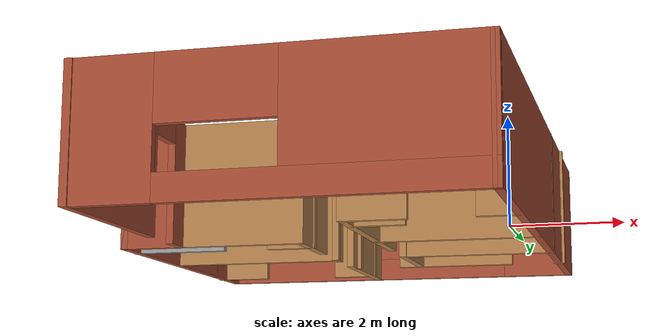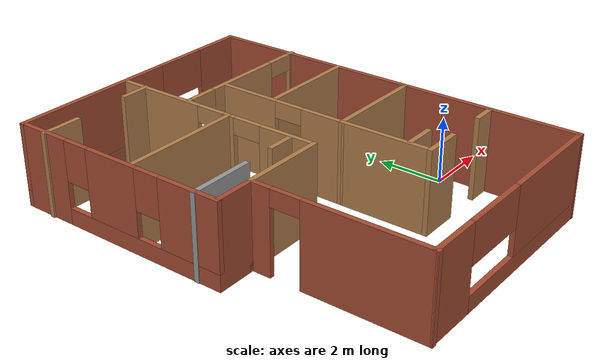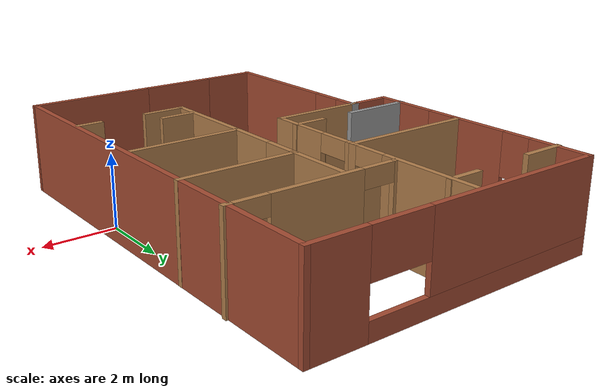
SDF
<?xml version='1.0'?>
<sdf version='1.6'>
  <model name='3bd2ba_apt_model'>
    <pose frame=''>-3.83179 2.15368 0 0 -0 0</pose>
    <link name='Wall_44'>
      <pose frame=''>0.608675 -5.95414 0 0 -0 -0.008592</pose>
      <visual name='Wall_44_Visual_0'>
        <pose frame=''>-2.8309 0 1.25 0 -0 0</pose>
        <geometry>
          <box>
            <size>1.5982 0.15 2.5</size>
          </box>
        </geometry>
        <material>
          <script>
            <uri>file://media/materials/scripts/gazebo.material</uri>
            <name>Gazebo/Bricks</name>
          </script>
          <ambient>1 1 1 1</ambient>
        </material>
        <meta>
          <layer>0</layer>
        </meta>
      </visual>
      <collision name='Wall_44_Collision_0'>
        <geometry>
          <box>
            <size>1.5982 0.15 2.5</size>
          </box>
        </geometry>
        <pose frame=''>-2.8309 0 1.25 0 -0 0</pose>
      </collision>
      <visual name='Wall_44_Visual_1'>
        <pose frame=''>0.799099 0 0.25 0 -0 0</pose>
        <geometry>
          <box>
            <size>5.6618 0.15 0.5</size>
          </box>
        </geometry>
        <material>
          <script>
            <uri>file://media/materials/scripts/gazebo.material</uri>
            <name>Gazebo/Bricks</name>
          </script>
          <ambient>1 1 1 1</ambient>
        </material>
        <meta>
          <layer>0</layer>
        </meta>
      </visual>
      <collision name='Wall_44_Collision_1'>
        <geometry>
          <box>
            <size>5.6618 0.15 0.5</size>
          </box>
        </geometry>
        <pose frame=''>0.799099 0 0.25 0 -0 0</pose>
      </collision>
      <visual name='Wall_44_Visual_2'>
        <pose frame=''>1.86156 0 1.5 0 -0 0</pose>
        <geometry>
          <box>
            <size>3.53689 0.15 2</size>
          </box>
        </geometry>
        <material>
          <script>
            <uri>file://media/materials/scripts/gazebo.material</uri>
            <name>Gazebo/Bricks</name>
          </script>
          <ambient>1 1 1 1</ambient>
        </material>
        <meta>
          <layer>0</layer>
        </meta>
      </visual>
      <collision name='Wall_44_Collision_2'>
        <geometry>
          <box>
            <size>3.53689 0.15 2</size>
          </box>
        </geometry>
        <pose frame=''>1.86156 0 1.5 0 -0 0</pose>
      </collision>
      <visual name='Wall_44_Visual_3'>
        <pose frame=''>-0.969345 0 1.9 0 -0 0</pose>
        <geometry>
          <box>
            <size>2.12492 0.15 1.2</size>
          </box>
        </geometry>
        <material>
          <script>
            <uri>file://media/materials/scripts/gazebo.material</uri>
            <name>Gazebo/Bricks</name>
          </script>
          <ambient>1 1 1 1</ambient>
        </material>
        <meta>
          <layer>0</layer>
        </meta>
      </visual>
      <collision name='Wall_44_Collision_3'>
        <geometry>
          <box>
            <size>2.12492 0.15 1.2</size>
          </box>
        </geometry>
        <pose frame=''>-0.969345 0 1.9 0 -0 0</pose>
      </collision>
    </link>
    <link name='Wall_46'>
      <collision name='Wall_46_Collision'>
        <geometry>
          <box>
            <size>12.12 0.15 2.5</size>
          </box>
        </geometry>
        <pose frame=''>0 0 1.25 0 -0 0</pose>
      </collision>
      <visual name='Wall_46_Visual'>
        <pose frame=''>0 0 1.25 0 -0 0</pose>
        <geometry>
          <box>
            <size>12.12 0.15 2.5</size>
          </box>
        </geometry>
        <material>
          <script>
            <uri>file://media/materials/scripts/gazebo.material</uri>
            <name>Gazebo/Bricks</name>
          </script>
          <ambient>1 1 1 1</ambient>
        </material>
        <meta>
          <layer>0</layer>
        </meta>
      </visual>
      <pose frame=''>4.16379 0.000319 0 0 -0 1.5708</pose>
    </link>
    <link name='Wall_51'>
      <pose frame=''>-2.95519 -3.45318 0 0 -0 1.57429</pose>
      <visual name='Wall_51_Visual_0'>
        <pose frame=''>-0.739433 0 1.25 0 -0 0</pose>
        <geometry>
          <box>
            <size>3.67317 0.15 2.5</size>
          </box>
        </geometry>
        <material>
          <script>
            <uri>file://media/materials/scripts/gazebo.material</uri>
            <name>Gazebo/Bricks</name>
          </script>
          <ambient>1 1 1 1</ambient>
        </material>
        <meta>
          <layer>0</layer>
        </meta>
      </visual>
      <collision name='Wall_51_Collision_0'>
        <geometry>
          <box>
            <size>3.67317 0.15 2.5</size>
          </box>
        </geometry>
        <pose frame=''>-0.739433 0 1.25 0 -0 0</pose>
      </collision>
      <visual name='Wall_51_Visual_1'>
        <pose frame=''>2.28658 0 1.25 0 -0 0</pose>
        <geometry>
          <box>
            <size>0.578866 0.15 2.5</size>
          </box>
        </geometry>
        <material>
          <script>
            <uri>file://media/materials/scripts/gazebo.material</uri>
            <name>Gazebo/Bricks</name>
          </script>
          <ambient>1 1 1 1</ambient>
        </material>
        <meta>
          <layer>0</layer>
        </meta>
      </visual>
      <collision name='Wall_51_Collision_1'>
        <geometry>
          <box>
            <size>0.578866 0.15 2.5</size>
          </box>
        </geometry>
        <pose frame=''>2.28658 0 1.25 0 -0 0</pose>
      </collision>
      <visual name='Wall_51_Visual_2'>
        <pose frame=''>1.54715 0 2.25 0 -0 0</pose>
        <geometry>
          <box>
            <size>0.9 0.15 0.5</size>
          </box>
        </geometry>
        <material>
          <script>
            <uri>file://media/materials/scripts/gazebo.material</uri>
            <name>Gazebo/Bricks</name>
          </script>
          <ambient>1 1 1 1</ambient>
        </material>
        <meta>
          <layer>0</layer>
        </meta>
      </visual>
      <collision name='Wall_51_Collision_2'>
        <geometry>
          <box>
            <size>0.9 0.15 0.5</size>
          </box>
        </geometry>
        <pose frame=''>1.54715 0 2.25 0 -0 0</pose>
      </collision>
    </link>
    <link name='Wall_53'>
      <pose frame=''>-0.003209 5.98532 0 0 -0 3.14159</pose>
      <visual name='Wall_53_Visual_0'>
        <pose frame=''>-3.44144 0 1.25 0 -0 0</pose>
        <geometry>
          <box>
            <size>1.60111 0.15 2.5</size>
          </box>
        </geometry>
        <material>
          <script>
            <uri>file://media/materials/scripts/gazebo.material</uri>
            <name>Gazebo/Bricks</name>
          </script>
          <ambient>1 1 1 1</ambient>
        </material>
        <meta>
          <layer>0</layer>
        </meta>
      </visual>
      <collision name='Wall_53_Collision_0'>
        <geometry>
          <box>
            <size>1.60111 0.15 2.5</size>
          </box>
        </geometry>
        <pose frame=''>-3.44144 0 1.25 0 -0 0</pose>
      </collision>
      <visual name='Wall_53_Visual_1'>
        <pose frame=''>0.800555 0 0.25 0 -0 0</pose>
        <geometry>
          <box>
            <size>6.88289 0.15 0.5</size>
          </box>
        </geometry>
        <material>
          <script>
            <uri>file://media/materials/scripts/gazebo.material</uri>
            <name>Gazebo/Bricks</name>
          </script>
          <ambient>1 1 1 1</ambient>
        </material>
        <meta>
          <layer>0</layer>
        </meta>
      </visual>
      <collision name='Wall_53_Collision_1'>
        <geometry>
          <box>
            <size>6.88289 0.15 0.5</size>
          </box>
        </geometry>
        <pose frame=''>0.800555 0 0.25 0 -0 0</pose>
      </collision>
      <visual name='Wall_53_Visual_2'>
        <pose frame=''>1.63125 0 1.5 0 -0 0</pose>
        <geometry>
          <box>
            <size>5.2215 0.15 2</size>
          </box>
        </geometry>
        <material>
          <script>
            <uri>file://media/materials/scripts/gazebo.material</uri>
            <name>Gazebo/Bricks</name>
          </script>
          <ambient>1 1 1 1</ambient>
        </material>
        <meta>
          <layer>0</layer>
        </meta>
      </visual>
      <collision name='Wall_53_Collision_2'>
        <geometry>
          <box>
            <size>5.2215 0.15 2</size>
          </box>
        </geometry>
        <pose frame=''>1.63125 0 1.5 0 -0 0</pose>
      </collision>
      <visual name='Wall_53_Visual_3'>
        <pose frame=''>-1.81019 0 1.9 0 -0 0</pose>
        <geometry>
          <box>
            <size>1.66139 0.15 1.2</size>
          </box>
        </geometry>
        <material>
          <script>
            <uri>file://media/materials/scripts/gazebo.material</uri>
            <name>Gazebo/Bricks</name>
          </script>
          <ambient>1 1 1 1</ambient>
        </material>
        <meta>
          <layer>0</layer>
        </meta>
      </visual>
      <collision name='Wall_53_Collision_3'>
        <geometry>
          <box>
            <size>1.66139 0.15 1.2</size>
          </box>
        </geometry>
        <pose frame=''>-1.81019 0 1.9 0 -0 0</pose>
      </collision>
    </link>
    <link name='Wall_55'>
      <pose frame=''>-4.17021 2.57582 0 0 -0 -1.5708</pose>
      <visual name='Wall_55_Visual_0'>
        <pose frame=''>-2.62395 0 1.25 0 -0 0</pose>
        <geometry>
          <box>
            <size>1.72111 0.15 2.5</size>
          </box>
        </geometry>
        <material>
          <script>
            <uri>file://media/materials/scripts/gazebo.material</uri>
            <name>Gazebo/Bricks</name>
          </script>
          <ambient>1 1 1 1</ambient>
        </material>
        <meta>
          <layer>0</layer>
        </meta>
      </visual>
      <collision name='Wall_55_Collision_0'>
        <geometry>
          <box>
            <size>1.72111 0.15 2.5</size>
          </box>
        </geometry>
        <pose frame=''>-2.62395 0 1.25 0 -0 0</pose>
      </collision>
      <visual name='Wall_55_Visual_1'>
        <pose frame=''>0.860554 0 0.25 0 -0 0</pose>
        <geometry>
          <box>
            <size>5.24789 0.15 0.5</size>
          </box>
        </geometry>
        <material>
          <script>
            <uri>file://media/materials/scripts/gazebo.material</uri>
            <name>Gazebo/Bricks</name>
          </script>
          <ambient>1 1 1 1</ambient>
        </material>
        <meta>
          <layer>0</layer>
        </meta>
      </visual>
      <collision name='Wall_55_Collision_1'>
        <geometry>
          <box>
            <size>5.24789 0.15 0.5</size>
          </box>
        </geometry>
        <pose frame=''>0.860554 0 0.25 0 -0 0</pose>
      </collision>
      <visual name='Wall_55_Visual_2'>
        <pose frame=''>-0.102071 0 1.5 0 -0 0</pose>
        <geometry>
          <box>
            <size>1.72264 0.15 2</size>
          </box>
        </geometry>
        <material>
          <script>
            <uri>file://media/materials/scripts/gazebo.material</uri>
            <name>Gazebo/Bricks</name>
          </script>
          <ambient>1 1 1 1</ambient>
        </material>
        <meta>
          <layer>0</layer>
        </meta>
      </visual>
      <collision name='Wall_55_Collision_2'>
        <geometry>
          <box>
            <size>1.72264 0.15 2</size>
          </box>
        </geometry>
        <pose frame=''>-0.102071 0 1.5 0 -0 0</pose>
      </collision>
      <visual name='Wall_55_Visual_3'>
        <pose frame=''>2.52188 0 1.5 0 -0 0</pose>
        <geometry>
          <box>
            <size>1.92525 0.15 2</size>
          </box>
        </geometry>
        <material>
          <script>
            <uri>file://media/materials/scripts/gazebo.material</uri>
            <name>Gazebo/Bricks</name>
          </script>
          <ambient>1 1 1 1</ambient>
        </material>
        <meta>
          <layer>0</layer>
        </meta>
      </visual>
      <collision name='Wall_55_Collision_3'>
        <geometry>
          <box>
            <size>1.92525 0.15 2</size>
          </box>
        </geometry>
        <pose frame=''>2.52188 0 1.5 0 -0 0</pose>
      </collision>
      <visual name='Wall_55_Visual_4'>
        <pose frame=''>-1.36339 0 1.9 0 -0 0</pose>
        <geometry>
          <box>
            <size>0.8 0.15 1.2</size>
          </box>
        </geometry>
        <material>
          <script>
            <uri>file://media/materials/scripts/gazebo.material</uri>
            <name>Gazebo/Bricks</name>
          </script>
          <ambient>1 1 1 1</ambient>
        </material>
        <meta>
          <layer>0</layer>
        </meta>
      </visual>
      <collision name='Wall_55_Collision_4'>
        <geometry>
          <box>
            <size>0.8 0.15 1.2</size>
          </box>
        </geometry>
        <pose frame=''>-1.36339 0 1.9 0 -0 0</pose>
      </collision>
      <visual name='Wall_55_Visual_5'>
        <pose frame=''>1.15925 0 1.9 0 -0 0</pose>
        <geometry>
          <box>
            <size>0.8 0.15 1.2</size>
          </box>
        </geometry>
        <material>
          <script>
            <uri>file://media/materials/scripts/gazebo.material</uri>
            <name>Gazebo/Bricks</name>
          </script>
          <ambient>1 1 1 1</ambient>
        </material>
        <meta>
          <layer>0</layer>
        </meta>
      </visual>
      <collision name='Wall_55_Collision_5'>
        <geometry>
          <box>
            <size>0.8 0.15 1.2</size>
          </box>
        </geometry>
        <pose frame=''>1.15925 0 1.9 0 -0 0</pose>
      </collision>
    </link>
    <link name='Wall_57'>
      <collision name='Wall_57_Collision'>
        <geometry>
          <box>
            <size>1.25 0.15 2.5</size>
          </box>
        </geometry>
        <pose frame=''>0 0 1.25 0 -0 0</pose>
      </collision>
      <visual name='Wall_57_Visual'>
        <pose frame=''>0 0 1.25 0 -0 0</pose>
        <geometry>
          <box>
            <size>1.25 0.15 2.5</size>
          </box>
        </geometry>
        <material>
          <script>
            <uri>file://media/materials/scripts/gazebo.material</uri>
            <name>Gazebo/Bricks</name>
          </script>
          <ambient>1 1 1 1</ambient>
        </material>
        <meta>
          <layer>0</layer>
        </meta>
      </visual>
      <pose frame=''>-3.62021 -0.833681 0 0 -0 0</pose>
    </link>
    <link name='Wall_58'>
      <collision name='Wall_58_Collision'>
        <geometry>
          <box>
            <size>0.25 0.15 2.5</size>
          </box>
        </geometry>
        <pose frame=''>0 0 1.25 0 -0 0</pose>
      </collision>
      <visual name='Wall_58_Visual'>
        <pose frame=''>0 0 1.25 0 -0 0</pose>
        <geometry>
          <box>
            <size>0.25 0.15 2.5</size>
          </box>
        </geometry>
        <material>
          <script>
            <uri>file://media/materials/scripts/gazebo.material</uri>
            <name>Gazebo/Grey</name>
          </script>
          <ambient>1 1 1 1</ambient>
        </material>
        <meta>
          <layer>0</layer>
        </meta>
      </visual>
      <pose frame=''>-3.02021 -0.833681 0 0 -0 0</pose>
    </link>
    <link name='Wall_62'>
      <collision name='Wall_62_Collision'>
        <geometry>
          <box>
            <size>2.85007 0.15 2.5</size>
          </box>
        </geometry>
        <pose frame=''>0 0 1.25 0 -0 0</pose>
      </collision>
      <visual name='Wall_62_Visual'>
        <pose frame=''>0 0 1.25 0 -0 0</pose>
        <geometry>
          <box>
            <size>2.85007 0.15 2.5</size>
          </box>
        </geometry>
        <material>
          <script>
            <uri>file://media/materials/scripts/gazebo.material</uri>
            <name>Gazebo/Wood</name>
          </script>
          <ambient>1 1 1 1</ambient>
        </material>
        <meta>
          <layer>0</layer>
        </meta>
      </visual>
      <pose frame=''>1.04505 -2.03257 0 0 -0 1.5708</pose>
    </link>
    <link name='Wall_63'>
      <collision name='Wall_63_Collision'>
        <geometry>
          <box>
            <size>3.25 0.15 2.5</size>
          </box>
        </geometry>
        <pose frame=''>0 0 1.25 0 -0 0</pose>
      </collision>
      <visual name='Wall_63_Visual'>
        <pose frame=''>0 0 1.25 0 -0 0</pose>
        <geometry>
          <box>
            <size>3.25 0.15 2.5</size>
          </box>
        </geometry>
        <material>
          <script>
            <uri>file://media/materials/scripts/gazebo.material</uri>
            <name>Gazebo/Wood</name>
          </script>
          <ambient>1 1 1 1</ambient>
        </material>
        <meta>
          <layer>0</layer>
        </meta>
      </visual>
      <pose frame=''>2.59504 -0.651773 0 0 -0 0</pose>
    </link>
    <link name='Wall_65'>
      <collision name='Wall_65_Collision'>
        <geometry>
          <box>
            <size>2.75 0.15 2.5</size>
          </box>
        </geometry>
        <pose frame=''>0 0 1.25 0 -0 0</pose>
      </collision>
      <visual name='Wall_65_Visual'>
        <pose frame=''>0 0 1.25 0 -0 0</pose>
        <geometry>
          <box>
            <size>2.75 0.15 2.5</size>
          </box>
        </geometry>
        <material>
          <script>
            <uri>file://media/materials/scripts/gazebo.material</uri>
            <name>Gazebo/Wood</name>
          </script>
          <ambient>1 1 1 1</ambient>
        </material>
        <meta>
          <layer>0</layer>
        </meta>
      </visual>
      <pose frame=''>-1.77021 -0.833681 0 0 -0 0</pose>
    </link>
    <link name='Wall_66'>
      <pose frame=''>-0.470209 0.591319 0 0 -0 1.5708</pose>
      <visual name='Wall_66_Visual_0'>
        <pose frame=''>-0.593139 0 1.25 0 -0 0</pose>
        <geometry>
          <box>
            <size>1.81372 0.15 2.5</size>
          </box>
        </geometry>
        <material>
          <script>
            <uri>file://media/materials/scripts/gazebo.material</uri>
            <name>Gazebo/Wood</name>
          </script>
          <ambient>1 1 1 1</ambient>
        </material>
        <meta>
          <layer>0</layer>
        </meta>
      </visual>
      <collision name='Wall_66_Collision_0'>
        <geometry>
          <box>
            <size>1.81372 0.15 2.5</size>
          </box>
        </geometry>
        <pose frame=''>-0.593139 0 1.25 0 -0 0</pose>
      </collision>
      <visual name='Wall_66_Visual_1'>
        <pose frame=''>1.35686 0 1.25 0 -0 0</pose>
        <geometry>
          <box>
            <size>0.286278 0.15 2.5</size>
          </box>
        </geometry>
        <material>
          <script>
            <uri>file://media/materials/scripts/gazebo.material</uri>
            <name>Gazebo/Wood</name>
          </script>
          <ambient>1 1 1 1</ambient>
        </material>
        <meta>
          <layer>0</layer>
        </meta>
      </visual>
      <collision name='Wall_66_Collision_1'>
        <geometry>
          <box>
            <size>0.286278 0.15 2.5</size>
          </box>
        </geometry>
        <pose frame=''>1.35686 0 1.25 0 -0 0</pose>
      </collision>
      <visual name='Wall_66_Visual_2'>
        <pose frame=''>0.763722 0 2.25 0 -0 0</pose>
        <geometry>
          <box>
            <size>0.9 0.15 0.5</size>
          </box>
        </geometry>
        <material>
          <script>
            <uri>file://media/materials/scripts/gazebo.material</uri>
            <name>Gazebo/Wood</name>
          </script>
          <ambient>1 1 1 1</ambient>
        </material>
        <meta>
          <layer>0</layer>
        </meta>
      </visual>
      <collision name='Wall_66_Collision_2'>
        <geometry>
          <box>
            <size>0.9 0.15 0.5</size>
          </box>
        </geometry>
        <pose frame=''>0.763722 0 2.25 0 -0 0</pose>
      </collision>
    </link>
    <link name='Wall_67'>
      <collision name='Wall_67_Collision'>
        <geometry>
          <box>
            <size>3.75 0.15 2.5</size>
          </box>
        </geometry>
        <pose frame=''>0 0 1.25 0 -0 0</pose>
      </collision>
      <visual name='Wall_67_Visual'>
        <pose frame=''>0 0 1.25 0 -0 0</pose>
        <geometry>
          <box>
            <size>3.75 0.15 2.5</size>
          </box>
        </geometry>
        <material>
          <script>
            <uri>file://media/materials/scripts/gazebo.material</uri>
            <name>Gazebo/Wood</name>
          </script>
          <ambient>1 1 1 1</ambient>
        </material>
        <meta>
          <layer>0</layer>
        </meta>
      </visual>
      <pose frame=''>-2.27021 2.01632 0 0 -0 3.14159</pose>
    </link>
    <link name='Wall_69'>
      <pose frame=''>-0.470209 3.94132 0 0 -0 1.5708</pose>
      <visual name='Wall_69_Visual_0'>
        <pose frame=''>-1.8721 0 1.25 0 -0 0</pose>
        <geometry>
          <box>
            <size>0.255807 0.15 2.5</size>
          </box>
        </geometry>
        <material>
          <script>
            <uri>file://media/materials/scripts/gazebo.material</uri>
            <name>Gazebo/Wood</name>
          </script>
          <ambient>1 1 1 1</ambient>
        </material>
        <meta>
          <layer>0</layer>
        </meta>
      </visual>
      <collision name='Wall_69_Collision_0'>
        <geometry>
          <box>
            <size>0.255807 0.15 2.5</size>
          </box>
        </geometry>
        <pose frame=''>-1.8721 0 1.25 0 -0 0</pose>
      </collision>
      <visual name='Wall_69_Visual_1'>
        <pose frame=''>0.577904 0 1.25 0 -0 0</pose>
        <geometry>
          <box>
            <size>2.84419 0.15 2.5</size>
          </box>
        </geometry>
        <material>
          <script>
            <uri>file://media/materials/scripts/gazebo.material</uri>
            <name>Gazebo/Wood</name>
          </script>
          <ambient>1 1 1 1</ambient>
        </material>
        <meta>
          <layer>0</layer>
        </meta>
      </visual>
      <collision name='Wall_69_Collision_1'>
        <geometry>
          <box>
            <size>2.84419 0.15 2.5</size>
          </box>
        </geometry>
        <pose frame=''>0.577904 0 1.25 0 -0 0</pose>
      </collision>
      <visual name='Wall_69_Visual_2'>
        <pose frame=''>-1.29419 0 2.25 0 -0 0</pose>
        <geometry>
          <box>
            <size>0.9 0.15 0.5</size>
          </box>
        </geometry>
        <material>
          <script>
            <uri>file://media/materials/scripts/gazebo.material</uri>
            <name>Gazebo/Wood</name>
          </script>
          <ambient>1 1 1 1</ambient>
        </material>
        <meta>
          <layer>0</layer>
        </meta>
      </visual>
      <collision name='Wall_69_Collision_2'>
        <geometry>
          <box>
            <size>0.9 0.15 0.5</size>
          </box>
        </geometry>
        <pose frame=''>-1.29419 0 2.25 0 -0 0</pose>
      </collision>
    </link>
    <link name='Wall_71'>
      <collision name='Wall_71_Collision'>
        <geometry>
          <box>
            <size>1.25 0.15 2.5</size>
          </box>
        </geometry>
        <pose frame=''>0 0 1.25 0 -0 0</pose>
      </collision>
      <visual name='Wall_71_Visual'>
        <pose frame=''>0 0 1.25 0 -0 0</pose>
        <geometry>
          <box>
            <size>1.25 0.15 2.5</size>
          </box>
        </geometry>
        <material>
          <script>
            <uri>file://media/materials/scripts/gazebo.material</uri>
            <name>Gazebo/Wood</name>
          </script>
          <ambient>1 1 1 1</ambient>
        </material>
        <meta>
          <layer>0</layer>
        </meta>
      </visual>
      <pose frame=''>-3.67275 5.07748 0 0 -0 0</pose>
    </link>
    <link name='Wall_73'>
      <collision name='Wall_73_Collision'>
        <geometry>
          <box>
            <size>1 0.15 2.5</size>
          </box>
        </geometry>
        <pose frame=''>0 0 1.25 0 -0 0</pose>
      </collision>
      <visual name='Wall_73_Visual'>
        <pose frame=''>0 0 1.25 0 -0 0</pose>
        <geometry>
          <box>
            <size>1 0.15 2.5</size>
          </box>
        </geometry>
        <material>
          <script>
            <uri>file://media/materials/scripts/gazebo.material</uri>
            <name>Gazebo/Wood</name>
          </script>
          <ambient>1 1 1 1</ambient>
        </material>
        <meta>
          <layer>0</layer>
        </meta>
      </visual>
      <pose frame=''>-0.863782 5.16977 0 0 -0 3.14159</pose>
    </link>
    <link name='Wall_75'>
      <collision name='Wall_75_Collision'>
        <geometry>
          <box>
            <size>2 0.15 2.5</size>
          </box>
        </geometry>
        <pose frame=''>0 0 1.25 0 -0 0</pose>
      </collision>
      <visual name='Wall_75_Visual'>
        <pose frame=''>0 0 1.25 0 -0 0</pose>
        <geometry>
          <box>
            <size>2 0.15 2.5</size>
          </box>
        </geometry>
        <material>
          <script>
            <uri>file://media/materials/scripts/gazebo.material</uri>
            <name>Gazebo/Grey</name>
          </script>
          <ambient>1 1 1 1</ambient>
        </material>
        <meta>
          <layer>0</layer>
        </meta>
      </visual>
      <pose frame=''>-3.26698 -0.152392 0 0 -0 0</pose>
    </link>
    <link name='Wall_77'>
      <collision name='Wall_77_Collision'>
        <geometry>
          <box>
            <size>1 0.15 2.5</size>
          </box>
        </geometry>
        <pose frame=''>0 0 1.25 0 -0 0</pose>
      </collision>
      <visual name='Wall_77_Visual'>
        <pose frame=''>0 0 1.25 0 -0 0</pose>
        <geometry>
          <box>
            <size>1 0.15 2.5</size>
          </box>
        </geometry>
        <material>
          <script>
            <uri>file://media/materials/scripts/gazebo.material</uri>
            <name>Gazebo/Wood</name>
          </script>
          <ambient>1 1 1 1</ambient>
        </material>
        <meta>
          <layer>0</layer>
        </meta>
      </visual>
      <pose frame=''>-0.863782 -0.121628 0 0 -0 3.14159</pose>
    </link>
    <link name='Wall_79'>
      <collision name='Wall_79_Collision'>
        <geometry>
          <box>
            <size>1 0.15 2.5</size>
          </box>
        </geometry>
        <pose frame=''>0 0 1.25 0 -0 0</pose>
      </collision>
      <visual name='Wall_79_Visual'>
        <pose frame=''>0 0 1.25 0 -0 0</pose>
        <geometry>
          <box>
            <size>1 0.15 2.5</size>
          </box>
        </geometry>
        <material>
          <script>
            <uri>file://media/materials/scripts/gazebo.material</uri>
            <name>Gazebo/Wood</name>
          </script>
          <ambient>1 1 1 1</ambient>
        </material>
        <meta>
          <layer>0</layer>
        </meta>
      </visual>
      <pose frame=''>1.55518 -2.73656 0 0 -0 0</pose>
    </link>
    <link name='Wall_81'>
      <pose frame=''>1.06043 1.36729 0 0 -0 1.56329</pose>
      <visual name='Wall_81_Visual_0'>
        <pose frame=''>-1.40121 0 1.25 0 -0 0</pose>
        <geometry>
          <box>
            <size>1.44736 0.15 2.5</size>
          </box>
        </geometry>
        <material>
          <script>
            <uri>file://media/materials/scripts/gazebo.material</uri>
            <name>Gazebo/Wood</name>
          </script>
          <ambient>1 1 1 1</ambient>
        </material>
        <meta>
          <layer>0</layer>
        </meta>
      </visual>
      <collision name='Wall_81_Collision_0'>
        <geometry>
          <box>
            <size>1.44736 0.15 2.5</size>
          </box>
        </geometry>
        <pose frame=''>-1.40121 0 1.25 0 -0 0</pose>
      </collision>
      <visual name='Wall_81_Visual_1'>
        <pose frame=''>1.17368 0 1.25 0 -0 0</pose>
        <geometry>
          <box>
            <size>1.90241 0.15 2.5</size>
          </box>
        </geometry>
        <material>
          <script>
            <uri>file://media/materials/scripts/gazebo.material</uri>
            <name>Gazebo/Wood</name>
          </script>
          <ambient>1 1 1 1</ambient>
        </material>
        <meta>
          <layer>0</layer>
        </meta>
      </visual>
      <collision name='Wall_81_Collision_1'>
        <geometry>
          <box>
            <size>1.90241 0.15 2.5</size>
          </box>
        </geometry>
        <pose frame=''>1.17368 0 1.25 0 -0 0</pose>
      </collision>
      <visual name='Wall_81_Visual_2'>
        <pose frame=''>-0.22753 0 2.25 0 -0 0</pose>
        <geometry>
          <box>
            <size>0.9 0.15 0.5</size>
          </box>
        </geometry>
        <material>
          <script>
            <uri>file://media/materials/scripts/gazebo.material</uri>
            <name>Gazebo/Wood</name>
          </script>
          <ambient>1 1 1 1</ambient>
        </material>
        <meta>
          <layer>0</layer>
        </meta>
      </visual>
      <collision name='Wall_81_Collision_2'>
        <geometry>
          <box>
            <size>0.9 0.15 0.5</size>
          </box>
        </geometry>
        <pose frame=''>-0.22753 0 2.25 0 -0 0</pose>
      </collision>
    </link>
    <link name='Wall_87'>
      <pose frame=''>1.92275 3.53928 0 0 -0 0</pose>
      <visual name='Wall_87_Visual_0'>
        <pose frame=''>-2.30101 0 1.25 0 -0 0</pose>
        <geometry>
          <box>
            <size>0.147987 0.15 2.5</size>
          </box>
        </geometry>
        <material>
          <script>
            <uri>file://media/materials/scripts/gazebo.material</uri>
            <name>Gazebo/Wood</name>
          </script>
          <ambient>1 1 1 1</ambient>
        </material>
        <meta>
          <layer>0</layer>
        </meta>
      </visual>
      <collision name='Wall_87_Collision_0'>
        <geometry>
          <box>
            <size>0.147987 0.15 2.5</size>
          </box>
        </geometry>
        <pose frame=''>-2.30101 0 1.25 0 -0 0</pose>
      </collision>
      <visual name='Wall_87_Visual_1'>
        <pose frame=''>-0.054232 0 1.25 0 -0 0</pose>
        <geometry>
          <box>
            <size>2.54556 0.15 2.5</size>
          </box>
        </geometry>
        <material>
          <script>
            <uri>file://media/materials/scripts/gazebo.material</uri>
            <name>Gazebo/Wood</name>
          </script>
          <ambient>1 1 1 1</ambient>
        </material>
        <meta>
          <layer>0</layer>
        </meta>
      </visual>
      <collision name='Wall_87_Collision_1'>
        <geometry>
          <box>
            <size>2.54556 0.15 2.5</size>
          </box>
        </geometry>
        <pose frame=''>-0.054232 0 1.25 0 -0 0</pose>
      </collision>
      <visual name='Wall_87_Visual_2'>
        <pose frame=''>2.24677 0 1.25 0 -0 0</pose>
        <geometry>
          <box>
            <size>0.256452 0.15 2.5</size>
          </box>
        </geometry>
        <material>
          <script>
            <uri>file://media/materials/scripts/gazebo.material</uri>
            <name>Gazebo/Wood</name>
          </script>
          <ambient>1 1 1 1</ambient>
        </material>
        <meta>
          <layer>0</layer>
        </meta>
      </visual>
      <collision name='Wall_87_Collision_2'>
        <geometry>
          <box>
            <size>0.256452 0.15 2.5</size>
          </box>
        </geometry>
        <pose frame=''>2.24677 0 1.25 0 -0 0</pose>
      </collision>
      <visual name='Wall_87_Visual_3'>
        <pose frame=''>-1.77701 0 2.25 0 -0 0</pose>
        <geometry>
          <box>
            <size>0.9 0.15 0.5</size>
          </box>
        </geometry>
        <material>
          <script>
            <uri>file://media/materials/scripts/gazebo.material</uri>
            <name>Gazebo/Wood</name>
          </script>
          <ambient>1 1 1 1</ambient>
        </material>
        <meta>
          <layer>0</layer>
        </meta>
      </visual>
      <collision name='Wall_87_Collision_3'>
        <geometry>
          <box>
            <size>0.9 0.15 0.5</size>
          </box>
        </geometry>
        <pose frame=''>-1.77701 0 2.25 0 -0 0</pose>
      </collision>
      <visual name='Wall_87_Visual_4'>
        <pose frame=''>1.66855 0 2.25 0 -0 0</pose>
        <geometry>
          <box>
            <size>0.9 0.15 0.5</size>
          </box>
        </geometry>
        <material>
          <script>
            <uri>file://media/materials/scripts/gazebo.material</uri>
            <name>Gazebo/Wood</name>
          </script>
          <ambient>1 1 1 1</ambient>
        </material>
        <meta>
          <layer>0</layer>
        </meta>
      </visual>
      <collision name='Wall_87_Collision_4'>
        <geometry>
          <box>
            <size>0.9 0.15 0.5</size>
          </box>
        </geometry>
        <pose frame=''>1.66855 0 2.25 0 -0 0</pose>
      </collision>
    </link>
    <link name='Wall_89'>
      <collision name='Wall_89_Collision'>
        <geometry>
          <box>
            <size>3.25 0.15 2.5</size>
          </box>
        </geometry>
        <pose frame=''>0 0 1.25 0 -0 0</pose>
      </collision>
      <visual name='Wall_89_Visual'>
        <pose frame=''>0 0 1.25 0 -0 0</pose>
        <geometry>
          <box>
            <size>3.25 0.15 2.5</size>
          </box>
        </geometry>
        <material>
          <script>
            <uri>file://media/materials/scripts/gazebo.material</uri>
            <name>Gazebo/Wood</name>
          </script>
          <ambient>1 1 1 1</ambient>
        </material>
        <meta>
          <layer>0</layer>
        </meta>
      </visual>
      <pose frame=''>2.61865 1.72421 0 0 -0 0</pose>
    </link>
    <link name='Wall_91'>
      <collision name='Wall_91_Collision'>
        <geometry>
          <box>
            <size>1.25 0.15 2.5</size>
          </box>
        </geometry>
        <pose frame=''>0 0 1.25 0 -0 0</pose>
      </collision>
      <visual name='Wall_91_Visual'>
        <pose frame=''>0 0 1.25 0 -0 0</pose>
        <geometry>
          <box>
            <size>1.25 0.15 2.5</size>
          </box>
        </geometry>
        <material>
          <script>
            <uri>file://media/materials/scripts/gazebo.material</uri>
            <name>Gazebo/Wood</name>
          </script>
          <ambient>1 1 1 1</ambient>
        </material>
        <meta>
          <layer>0</layer>
        </meta>
      </visual>
      <pose frame=''>1.59505 -3.38261 0 0 -0 0</pose>
    </link>
    <link name='Wall_94'>
      <collision name='Wall_94_Collision'>
        <geometry>
          <box>
            <size>0.75 0.15 2.5</size>
          </box>
        </geometry>
        <pose frame=''>0 0 1.25 0 -0 0</pose>
      </collision>
      <visual name='Wall_94_Visual'>
        <pose frame=''>0 0 1.25 0 -0 0</pose>
        <geometry>
          <box>
            <size>0.75 0.15 2.5</size>
          </box>
        </geometry>
        <material>
          <script>
            <uri>file://media/materials/scripts/gazebo.material</uri>
            <name>Gazebo/Wood</name>
          </script>
          <ambient>1 1 1 1</ambient>
        </material>
        <meta>
          <layer>0</layer>
        </meta>
      </visual>
      <pose frame=''>3.79505 -3.38261 0 0 -0 0</pose>
    </link>
    <static>1</static>
  </model>
</sdf>
